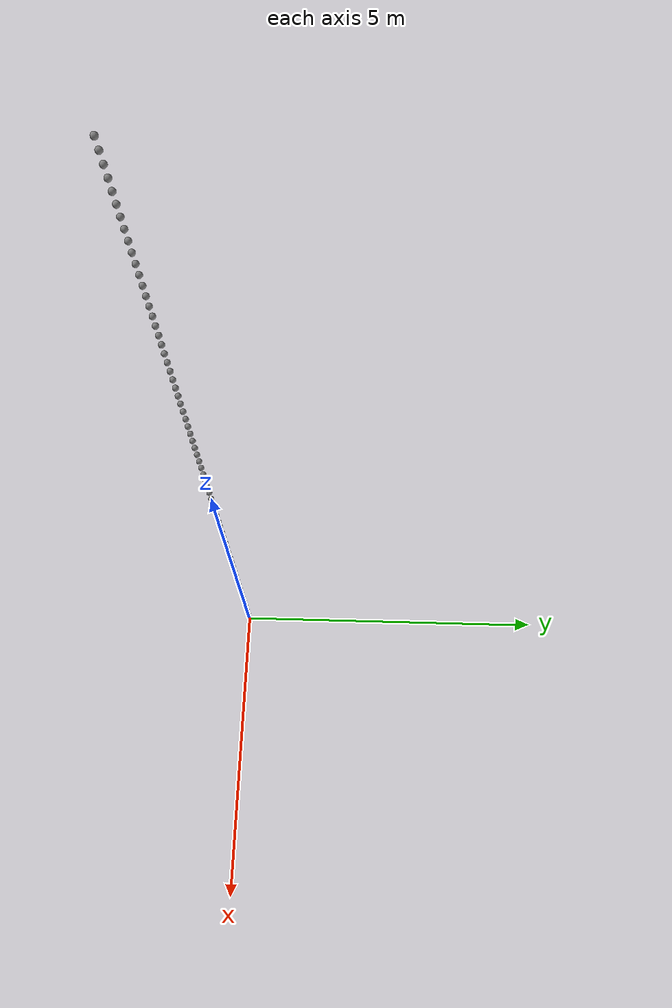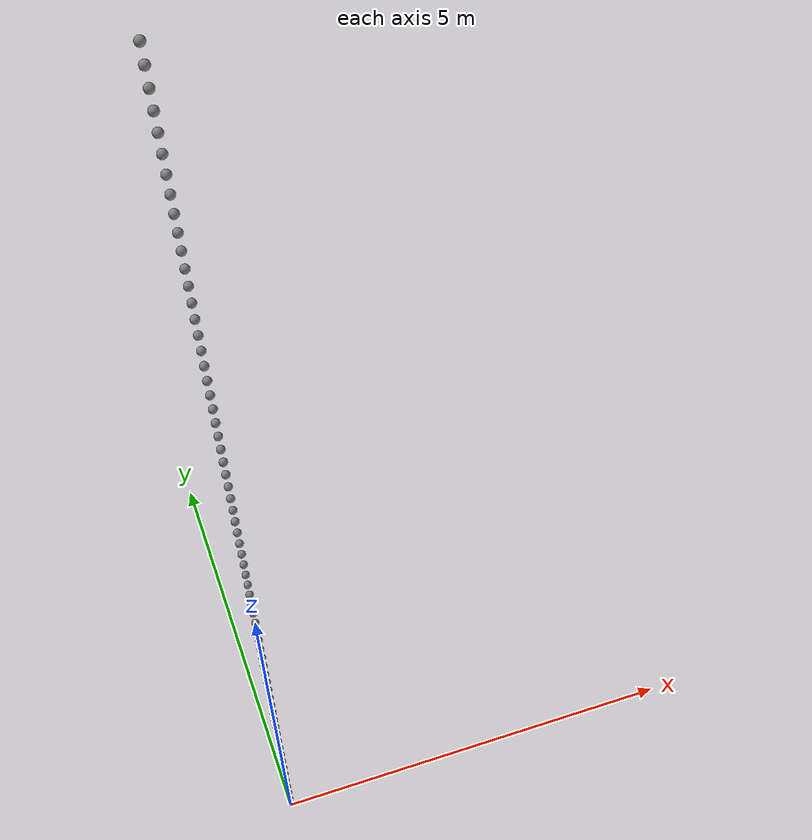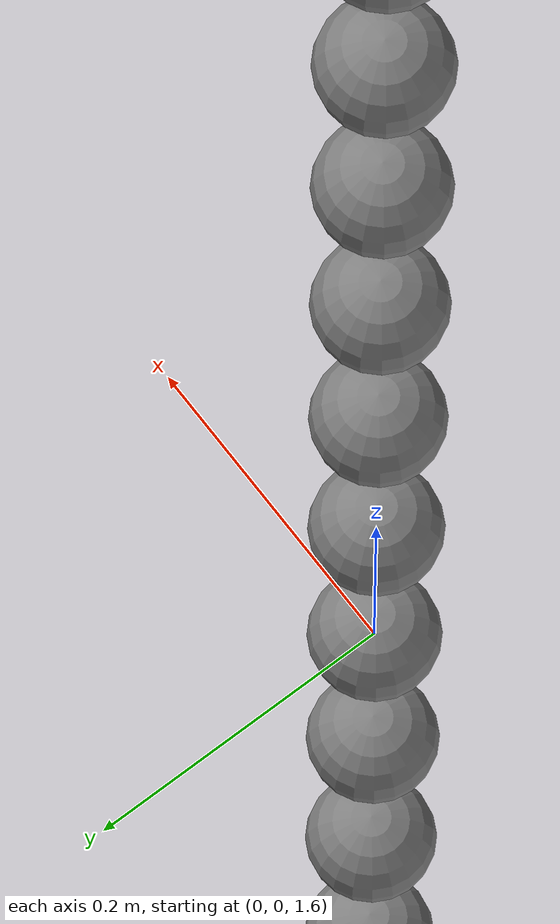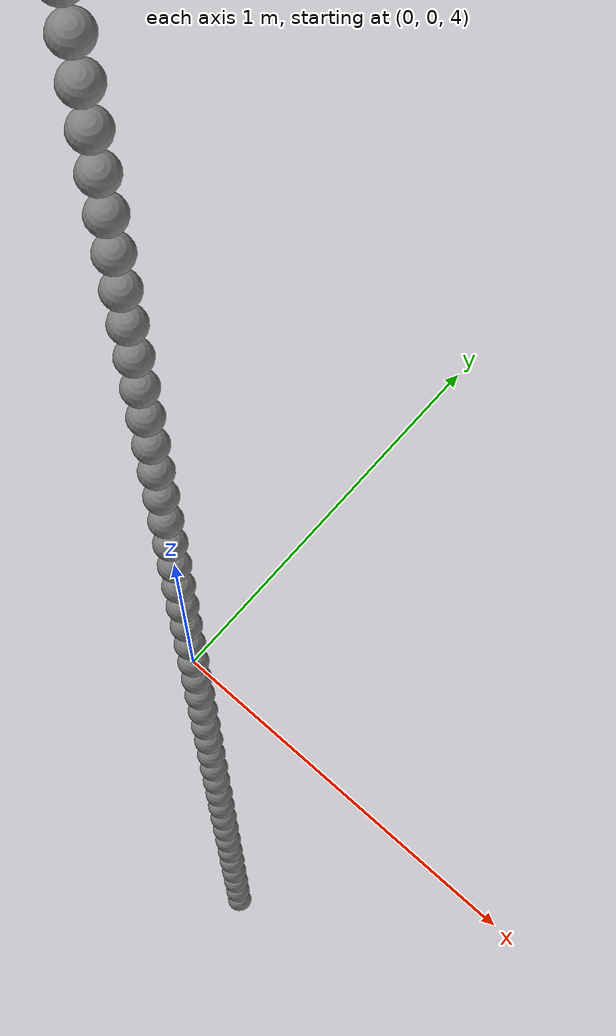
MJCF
<mujoco><option timestep=".002" gravity="0 0 0" jacobian="dense"/><worldbody><body pos="0 0 .2"><joint name="j0"/><geom size=".04" mass="1" contype="0" conaffinity="0"/><body pos="0 0 .2"><joint name="j1"/><geom size=".04" mass="1" contype="0" conaffinity="0"/><body pos="0 0 .2"><joint name="j2"/><geom size=".04" mass="1" contype="0" conaffinity="0"/><body pos="0 0 .2"><joint name="j3"/><geom size=".04" mass="1" contype="0" conaffinity="0"/><body pos="0 0 .2"><joint name="j4"/><geom size=".04" mass="1" contype="0" conaffinity="0"/><body pos="0 0 .2"><joint name="j5"/><geom size=".04" mass="1" contype="0" conaffinity="0"/><body pos="0 0 .2"><joint name="j6"/><geom size=".04" mass="1" contype="0" conaffinity="0"/><body pos="0 0 .2"><joint name="j7"/><geom size=".04" mass="1" contype="0" conaffinity="0"/><body pos="0 0 .2"><joint name="j8"/><geom size=".04" mass="1" contype="0" conaffinity="0"/><body pos="0 0 .2"><joint name="j9"/><geom size=".04" mass="1" contype="0" conaffinity="0"/><body pos="0 0 .2"><joint name="j10"/><geom size=".04" mass="1" contype="0" conaffinity="0"/><body pos="0 0 .2"><joint name="j11"/><geom size=".04" mass="1" contype="0" conaffinity="0"/><body pos="0 0 .2"><joint name="j12"/><geom size=".04" mass="1" contype="0" conaffinity="0"/><body pos="0 0 .2"><joint name="j13"/><geom size=".04" mass="1" contype="0" conaffinity="0"/><body pos="0 0 .2"><joint name="j14"/><geom size=".04" mass="1" contype="0" conaffinity="0"/><body pos="0 0 .2"><joint name="j15"/><geom size=".04" mass="1" contype="0" conaffinity="0"/><body pos="0 0 .2"><joint name="j16"/><geom size=".04" mass="1" contype="0" conaffinity="0"/><body pos="0 0 .2"><joint name="j17"/><geom size=".04" mass="1" contype="0" conaffinity="0"/><body pos="0 0 .2"><joint name="j18"/><geom size=".04" mass="1" contype="0" conaffinity="0"/><body pos="0 0 .2"><joint name="j19"/><geom size=".04" mass="1" contype="0" conaffinity="0"/><body pos="0 0 .2"><joint name="j20"/><geom size=".04" mass="1" contype="0" conaffinity="0"/><body pos="0 0 .2"><joint name="j21"/><geom size=".04" mass="1" contype="0" conaffinity="0"/><body pos="0 0 .2"><joint name="j22"/><geom size=".04" mass="1" contype="0" conaffinity="0"/><body pos="0 0 .2"><joint name="j23"/><geom size=".04" mass="1" contype="0" conaffinity="0"/><body pos="0 0 .2"><joint name="j24"/><geom size=".04" mass="1" contype="0" conaffinity="0"/><body pos="0 0 .2"><joint name="j25"/><geom size=".04" mass="1" contype="0" conaffinity="0"/><body pos="0 0 .2"><joint name="j26"/><geom size=".04" mass="1" contype="0" conaffinity="0"/><body pos="0 0 .2"><joint name="j27"/><geom size=".04" mass="1" contype="0" conaffinity="0"/><body pos="0 0 .2"><joint name="j28"/><geom size=".04" mass="1" contype="0" conaffinity="0"/><body pos="0 0 .2"><joint name="j29"/><geom size=".04" mass="1" contype="0" conaffinity="0"/><body pos="0 0 .2"><joint name="j30"/><geom size=".04" mass="1" contype="0" conaffinity="0"/><body pos="0 0 .2"><joint name="j31"/><geom size=".04" mass="1" contype="0" conaffinity="0"/><body pos="0 0 .2"><joint name="j32"/><geom size=".04" mass="1" contype="0" conaffinity="0"/><body pos="0 0 .2"><joint name="j33"/><geom size=".04" mass="1" contype="0" conaffinity="0"/><body pos="0 0 .2"><joint name="j34"/><geom size=".04" mass="1" contype="0" conaffinity="0"/><body pos="0 0 .2"><joint name="j35"/><geom size=".04" mass="1" contype="0" conaffinity="0"/><body pos="0 0 .2"><joint name="j36"/><geom size=".04" mass="1" contype="0" conaffinity="0"/><body pos="0 0 .2"><joint name="j37"/><geom size=".04" mass="1" contype="0" conaffinity="0"/><body pos="0 0 .2"><joint name="j38"/><geom size=".04" mass="1" contype="0" conaffinity="0"/><body pos="0 0 .2"><joint name="j39"/><geom size=".04" mass="1" contype="0" conaffinity="0"/><body pos="0 0 .2"><joint name="j40"/><geom size=".04" mass="1" contype="0" conaffinity="0"/><body pos="0 0 .2"><joint name="j41"/><geom size=".04" mass="1" contype="0" conaffinity="0"/><body pos="0 0 .2"><joint name="j42"/><geom size=".04" mass="1" contype="0" conaffinity="0"/><body pos="0 0 .2"><joint name="j43"/><geom size=".04" mass="1" contype="0" conaffinity="0"/><body pos="0 0 .2"><joint name="j44"/><geom size=".04" mass="1" contype="0" conaffinity="0"/><body pos="0 0 .2"><joint name="j45"/><geom size=".04" mass="1" contype="0" conaffinity="0"/><body pos="0 0 .2"><joint name="j46"/><geom size=".04" mass="1" contype="0" conaffinity="0"/><body pos="0 0 .2"><joint name="j47"/><geom size=".04" mass="1" contype="0" conaffinity="0"/><body pos="0 0 .2"><joint name="j48"/><geom size=".04" mass="1" contype="0" conaffinity="0"/><body pos="0 0 .2"><joint name="j49"/><geom size=".04" mass="1" contype="0" conaffinity="0"/><body pos="0 0 .2"><joint name="j50"/><geom size=".04" mass="1" contype="0" conaffinity="0"/><body pos="0 0 .2"><joint name="j51"/><geom size=".04" mass="1" contype="0" conaffinity="0"/><body pos="0 0 .2"><joint name="j52"/><geom size=".04" mass="1" contype="0" conaffinity="0"/><body pos="0 0 .2"><joint name="j53"/><geom size=".04" mass="1" contype="0" conaffinity="0"/><body pos="0 0 .2"><joint name="j54"/><geom size=".04" mass="1" contype="0" conaffinity="0"/><body pos="0 0 .2"><joint name="j55"/><geom size=".04" mass="1" contype="0" conaffinity="0"/><body pos="0 0 .2"><joint name="j56"/><geom size=".04" mass="1" contype="0" conaffinity="0"/><body pos="0 0 .2"><joint name="j57"/><geom size=".04" mass="1" contype="0" conaffinity="0"/><body pos="0 0 .2"><joint name="j58"/><geom size=".04" mass="1" contype="0" conaffinity="0"/><body pos="0 0 .2"><joint name="j59"/><geom size=".04" mass="1" contype="0" conaffinity="0"/><body pos="0 0 .2"><joint name="j60"/><geom size=".04" mass="1" contype="0" conaffinity="0"/><body pos="0 0 .2"><joint name="j61"/><geom size=".04" mass="1" contype="0" conaffinity="0"/><body pos="0 0 .2"><joint name="j62"/><geom size=".04" mass="1" contype="0" conaffinity="0"/><body pos="0 0 .2"><joint name="j63"/><geom size=".04" mass="1" contype="0" conaffinity="0"/></body></body></body></body></body></body></body></body></body></body></body></body></body></body></body></body></body></body></body></body></body></body></body></body></body></body></body></body></body></body></body></body></body></body></body></body></body></body></body></body></body></body></body></body></body></body></body></body></body></body></body></body></body></body></body></body></body></body></body></body></body></body></body></body></worldbody><actuator><dcmotor joint="j0" motorconst=".2" resistance="2" input="pos vel ff voltage" controller=".5 .8 .2 2 .5 12" cogging=".05 3 .2" inductance="0 .02" thermal="2 10 0 .003 20 20" lugre="30 .1 .2 .3 .1"/><dcmotor joint="j1" motorconst=".2" resistance="2" input="pos vel ff voltage" controller=".5 .8 .2 2 .5 12" cogging=".05 3 .2" inductance="0 .02" thermal="2 10 0 .003 20 20" lugre="30 .1 .2 .3 .1"/><dcmotor joint="j2" motorconst=".2" resistance="2" input="pos vel ff voltage" controller=".5 .8 .2 2 .5 12" cogging=".05 3 .2" inductance="0 .02" thermal="2 10 0 .003 20 20" lugre="30 .1 .2 .3 .1"/><dcmotor joint="j3" motorconst=".2" resistance="2" input="pos vel ff voltage" controller=".5 .8 .2 2 .5 12" cogging=".05 3 .2" inductance="0 .02" thermal="2 10 0 .003 20 20" lugre="30 .1 .2 .3 .1"/><dcmotor joint="j4" motorconst=".2" resistance="2" input="pos vel ff voltage" controller=".5 .8 .2 2 .5 12" cogging=".05 3 .2" inductance="0 .02" thermal="2 10 0 .003 20 20" lugre="30 .1 .2 .3 .1"/><dcmotor joint="j5" motorconst=".2" resistance="2" input="pos vel ff voltage" controller=".5 .8 .2 2 .5 12" cogging=".05 3 .2" inductance="0 .02" thermal="2 10 0 .003 20 20" lugre="30 .1 .2 .3 .1"/><dcmotor joint="j6" motorconst=".2" resistance="2" input="pos vel ff voltage" controller=".5 .8 .2 2 .5 12" cogging=".05 3 .2" inductance="0 .02" thermal="2 10 0 .003 20 20" lugre="30 .1 .2 .3 .1"/><dcmotor joint="j7" motorconst=".2" resistance="2" input="pos vel ff voltage" controller=".5 .8 .2 2 .5 12" cogging=".05 3 .2" inductance="0 .02" thermal="2 10 0 .003 20 20" lugre="30 .1 .2 .3 .1"/><dcmotor joint="j8" motorconst=".2" resistance="2" input="pos vel ff voltage" controller=".5 .8 .2 2 .5 12" cogging=".05 3 .2" inductance="0 .02" thermal="2 10 0 .003 20 20" lugre="30 .1 .2 .3 .1"/><dcmotor joint="j9" motorconst=".2" resistance="2" input="pos vel ff voltage" controller=".5 .8 .2 2 .5 12" cogging=".05 3 .2" inductance="0 .02" thermal="2 10 0 .003 20 20" lugre="30 .1 .2 .3 .1"/><dcmotor joint="j10" motorconst=".2" resistance="2" input="pos vel ff voltage" controller=".5 .8 .2 2 .5 12" cogging=".05 3 .2" inductance="0 .02" thermal="2 10 0 .003 20 20" lugre="30 .1 .2 .3 .1"/><dcmotor joint="j11" motorconst=".2" resistance="2" input="pos vel ff voltage" controller=".5 .8 .2 2 .5 12" cogging=".05 3 .2" inductance="0 .02" thermal="2 10 0 .003 20 20" lugre="30 .1 .2 .3 .1"/><dcmotor joint="j12" motorconst=".2" resistance="2" input="pos vel ff voltage" controller=".5 .8 .2 2 .5 12" cogging=".05 3 .2" inductance="0 .02" thermal="2 10 0 .003 20 20" lugre="30 .1 .2 .3 .1"/><dcmotor joint="j13" motorconst=".2" resistance="2" input="pos vel ff voltage" controller=".5 .8 .2 2 .5 12" cogging=".05 3 .2" inductance="0 .02" thermal="2 10 0 .003 20 20" lugre="30 .1 .2 .3 .1"/><dcmotor joint="j14" motorconst=".2" resistance="2" input="pos vel ff voltage" controller=".5 .8 .2 2 .5 12" cogging=".05 3 .2" inductance="0 .02" thermal="2 10 0 .003 20 20" lugre="30 .1 .2 .3 .1"/><dcmotor joint="j15" motorconst=".2" resistance="2" input="pos vel ff voltage" controller=".5 .8 .2 2 .5 12" cogging=".05 3 .2" inductance="0 .02" thermal="2 10 0 .003 20 20" lugre="30 .1 .2 .3 .1"/><dcmotor joint="j16" motorconst=".2" resistance="2" input="pos vel ff voltage" controller=".5 .8 .2 2 .5 12" cogging=".05 3 .2" inductance="0 .02" thermal="2 10 0 .003 20 20" lugre="30 .1 .2 .3 .1"/><dcmotor joint="j17" motorconst=".2" resistance="2" input="pos vel ff voltage" controller=".5 .8 .2 2 .5 12" cogging=".05 3 .2" inductance="0 .02" thermal="2 10 0 .003 20 20" lugre="30 .1 .2 .3 .1"/><dcmotor joint="j18" motorconst=".2" resistance="2" input="pos vel ff voltage" controller=".5 .8 .2 2 .5 12" cogging=".05 3 .2" inductance="0 .02" thermal="2 10 0 .003 20 20" lugre="30 .1 .2 .3 .1"/><dcmotor joint="j19" motorconst=".2" resistance="2" input="pos vel ff voltage" controller=".5 .8 .2 2 .5 12" cogging=".05 3 .2" inductance="0 .02" thermal="2 10 0 .003 20 20" lugre="30 .1 .2 .3 .1"/><dcmotor joint="j20" motorconst=".2" resistance="2" input="pos vel ff voltage" controller=".5 .8 .2 2 .5 12" cogging=".05 3 .2" inductance="0 .02" thermal="2 10 0 .003 20 20" lugre="30 .1 .2 .3 .1"/><dcmotor joint="j21" motorconst=".2" resistance="2" input="pos vel ff voltage" controller=".5 .8 .2 2 .5 12" cogging=".05 3 .2" inductance="0 .02" thermal="2 10 0 .003 20 20" lugre="30 .1 .2 .3 .1"/><dcmotor joint="j22" motorconst=".2" resistance="2" input="pos vel ff voltage" controller=".5 .8 .2 2 .5 12" cogging=".05 3 .2" inductance="0 .02" thermal="2 10 0 .003 20 20" lugre="30 .1 .2 .3 .1"/><dcmotor joint="j23" motorconst=".2" resistance="2" input="pos vel ff voltage" controller=".5 .8 .2 2 .5 12" cogging=".05 3 .2" inductance="0 .02" thermal="2 10 0 .003 20 20" lugre="30 .1 .2 .3 .1"/><dcmotor joint="j24" motorconst=".2" resistance="2" input="pos vel ff voltage" controller=".5 .8 .2 2 .5 12" cogging=".05 3 .2" inductance="0 .02" thermal="2 10 0 .003 20 20" lugre="30 .1 .2 .3 .1"/><dcmotor joint="j25" motorconst=".2" resistance="2" input="pos vel ff voltage" controller=".5 .8 .2 2 .5 12" cogging=".05 3 .2" inductance="0 .02" thermal="2 10 0 .003 20 20" lugre="30 .1 .2 .3 .1"/><dcmotor joint="j26" motorconst=".2" resistance="2" input="pos vel ff voltage" controller=".5 .8 .2 2 .5 12" cogging=".05 3 .2" inductance="0 .02" thermal="2 10 0 .003 20 20" lugre="30 .1 .2 .3 .1"/><dcmotor joint="j27" motorconst=".2" resistance="2" input="pos vel ff voltage" controller=".5 .8 .2 2 .5 12" cogging=".05 3 .2" inductance="0 .02" thermal="2 10 0 .003 20 20" lugre="30 .1 .2 .3 .1"/><dcmotor joint="j28" motorconst=".2" resistance="2" input="pos vel ff voltage" controller=".5 .8 .2 2 .5 12" cogging=".05 3 .2" inductance="0 .02" thermal="2 10 0 .003 20 20" lugre="30 .1 .2 .3 .1"/><dcmotor joint="j29" motorconst=".2" resistance="2" input="pos vel ff voltage" controller=".5 .8 .2 2 .5 12" cogging=".05 3 .2" inductance="0 .02" thermal="2 10 0 .003 20 20" lugre="30 .1 .2 .3 .1"/><dcmotor joint="j30" motorconst=".2" resistance="2" input="pos vel ff voltage" controller=".5 .8 .2 2 .5 12" cogging=".05 3 .2" inductance="0 .02" thermal="2 10 0 .003 20 20" lugre="30 .1 .2 .3 .1"/><dcmotor joint="j31" motorconst=".2" resistance="2" input="pos vel ff voltage" controller=".5 .8 .2 2 .5 12" cogging=".05 3 .2" inductance="0 .02" thermal="2 10 0 .003 20 20" lugre="30 .1 .2 .3 .1"/><dcmotor joint="j32" motorconst=".2" resistance="2" input="pos vel ff voltage" controller=".5 .8 .2 2 .5 12" cogging=".05 3 .2" inductance="0 .02" thermal="2 10 0 .003 20 20" lugre="30 .1 .2 .3 .1"/><dcmotor joint="j33" motorconst=".2" resistance="2" input="pos vel ff voltage" controller=".5 .8 .2 2 .5 12" cogging=".05 3 .2" inductance="0 .02" thermal="2 10 0 .003 20 20" lugre="30 .1 .2 .3 .1"/><dcmotor joint="j34" motorconst=".2" resistance="2" input="pos vel ff voltage" controller=".5 .8 .2 2 .5 12" cogging=".05 3 .2" inductance="0 .02" thermal="2 10 0 .003 20 20" lugre="30 .1 .2 .3 .1"/><dcmotor joint="j35" motorconst=".2" resistance="2" input="pos vel ff voltage" controller=".5 .8 .2 2 .5 12" cogging=".05 3 .2" inductance="0 .02" thermal="2 10 0 .003 20 20" lugre="30 .1 .2 .3 .1"/><dcmotor joint="j36" motorconst=".2" resistance="2" input="pos vel ff voltage" controller=".5 .8 .2 2 .5 12" cogging=".05 3 .2" inductance="0 .02" thermal="2 10 0 .003 20 20" lugre="30 .1 .2 .3 .1"/><dcmotor joint="j37" motorconst=".2" resistance="2" input="pos vel ff voltage" controller=".5 .8 .2 2 .5 12" cogging=".05 3 .2" inductance="0 .02" thermal="2 10 0 .003 20 20" lugre="30 .1 .2 .3 .1"/><dcmotor joint="j38" motorconst=".2" resistance="2" input="pos vel ff voltage" controller=".5 .8 .2 2 .5 12" cogging=".05 3 .2" inductance="0 .02" thermal="2 10 0 .003 20 20" lugre="30 .1 .2 .3 .1"/><dcmotor joint="j39" motorconst=".2" resistance="2" input="pos vel ff voltage" controller=".5 .8 .2 2 .5 12" cogging=".05 3 .2" inductance="0 .02" thermal="2 10 0 .003 20 20" lugre="30 .1 .2 .3 .1"/><dcmotor joint="j40" motorconst=".2" resistance="2" input="pos vel ff voltage" controller=".5 .8 .2 2 .5 12" cogging=".05 3 .2" inductance="0 .02" thermal="2 10 0 .003 20 20" lugre="30 .1 .2 .3 .1"/><dcmotor joint="j41" motorconst=".2" resistance="2" input="pos vel ff voltage" controller=".5 .8 .2 2 .5 12" cogging=".05 3 .2" inductance="0 .02" thermal="2 10 0 .003 20 20" lugre="30 .1 .2 .3 .1"/><dcmotor joint="j42" motorconst=".2" resistance="2" input="pos vel ff voltage" controller=".5 .8 .2 2 .5 12" cogging=".05 3 .2" inductance="0 .02" thermal="2 10 0 .003 20 20" lugre="30 .1 .2 .3 .1"/><dcmotor joint="j43" motorconst=".2" resistance="2" input="pos vel ff voltage" controller=".5 .8 .2 2 .5 12" cogging=".05 3 .2" inductance="0 .02" thermal="2 10 0 .003 20 20" lugre="30 .1 .2 .3 .1"/><dcmotor joint="j44" motorconst=".2" resistance="2" input="pos vel ff voltage" controller=".5 .8 .2 2 .5 12" cogging=".05 3 .2" inductance="0 .02" thermal="2 10 0 .003 20 20" lugre="30 .1 .2 .3 .1"/><dcmotor joint="j45" motorconst=".2" resistance="2" input="pos vel ff voltage" controller=".5 .8 .2 2 .5 12" cogging=".05 3 .2" inductance="0 .02" thermal="2 10 0 .003 20 20" lugre="30 .1 .2 .3 .1"/><dcmotor joint="j46" motorconst=".2" resistance="2" input="pos vel ff voltage" controller=".5 .8 .2 2 .5 12" cogging=".05 3 .2" inductance="0 .02" thermal="2 10 0 .003 20 20" lugre="30 .1 .2 .3 .1"/><dcmotor joint="j47" motorconst=".2" resistance="2" input="pos vel ff voltage" controller=".5 .8 .2 2 .5 12" cogging=".05 3 .2" inductance="0 .02" thermal="2 10 0 .003 20 20" lugre="30 .1 .2 .3 .1"/><dcmotor joint="j48" motorconst=".2" resistance="2" input="pos vel ff voltage" controller=".5 .8 .2 2 .5 12" cogging=".05 3 .2" inductance="0 .02" thermal="2 10 0 .003 20 20" lugre="30 .1 .2 .3 .1"/><dcmotor joint="j49" motorconst=".2" resistance="2" input="pos vel ff voltage" controller=".5 .8 .2 2 .5 12" cogging=".05 3 .2" inductance="0 .02" thermal="2 10 0 .003 20 20" lugre="30 .1 .2 .3 .1"/><dcmotor joint="j50" motorconst=".2" resistance="2" input="pos vel ff voltage" controller=".5 .8 .2 2 .5 12" cogging=".05 3 .2" inductance="0 .02" thermal="2 10 0 .003 20 20" lugre="30 .1 .2 .3 .1"/><dcmotor joint="j51" motorconst=".2" resistance="2" input="pos vel ff voltage" controller=".5 .8 .2 2 .5 12" cogging=".05 3 .2" inductance="0 .02" thermal="2 10 0 .003 20 20" lugre="30 .1 .2 .3 .1"/><dcmotor joint="j52" motorconst=".2" resistance="2" input="pos vel ff voltage" controller=".5 .8 .2 2 .5 12" cogging=".05 3 .2" inductance="0 .02" thermal="2 10 0 .003 20 20" lugre="30 .1 .2 .3 .1"/><dcmotor joint="j53" motorconst=".2" resistance="2" input="pos vel ff voltage" controller=".5 .8 .2 2 .5 12" cogging=".05 3 .2" inductance="0 .02" thermal="2 10 0 .003 20 20" lugre="30 .1 .2 .3 .1"/><dcmotor joint="j54" motorconst=".2" resistance="2" input="pos vel ff voltage" controller=".5 .8 .2 2 .5 12" cogging=".05 3 .2" inductance="0 .02" thermal="2 10 0 .003 20 20" lugre="30 .1 .2 .3 .1"/><dcmotor joint="j55" motorconst=".2" resistance="2" input="pos vel ff voltage" controller=".5 .8 .2 2 .5 12" cogging=".05 3 .2" inductance="0 .02" thermal="2 10 0 .003 20 20" lugre="30 .1 .2 .3 .1"/><dcmotor joint="j56" motorconst=".2" resistance="2" input="pos vel ff voltage" controller=".5 .8 .2 2 .5 12" cogging=".05 3 .2" inductance="0 .02" thermal="2 10 0 .003 20 20" lugre="30 .1 .2 .3 .1"/><dcmotor joint="j57" motorconst=".2" resistance="2" input="pos vel ff voltage" controller=".5 .8 .2 2 .5 12" cogging=".05 3 .2" inductance="0 .02" thermal="2 10 0 .003 20 20" lugre="30 .1 .2 .3 .1"/><dcmotor joint="j58" motorconst=".2" resistance="2" input="pos vel ff voltage" controller=".5 .8 .2 2 .5 12" cogging=".05 3 .2" inductance="0 .02" thermal="2 10 0 .003 20 20" lugre="30 .1 .2 .3 .1"/><dcmotor joint="j59" motorconst=".2" resistance="2" input="pos vel ff voltage" controller=".5 .8 .2 2 .5 12" cogging=".05 3 .2" inductance="0 .02" thermal="2 10 0 .003 20 20" lugre="30 .1 .2 .3 .1"/><dcmotor joint="j60" motorconst=".2" resistance="2" input="pos vel ff voltage" controller=".5 .8 .2 2 .5 12" cogging=".05 3 .2" inductance="0 .02" thermal="2 10 0 .003 20 20" lugre="30 .1 .2 .3 .1"/><dcmotor joint="j61" motorconst=".2" resistance="2" input="pos vel ff voltage" controller=".5 .8 .2 2 .5 12" cogging=".05 3 .2" inductance="0 .02" thermal="2 10 0 .003 20 20" lugre="30 .1 .2 .3 .1"/><dcmotor joint="j62" motorconst=".2" resistance="2" input="pos vel ff voltage" controller=".5 .8 .2 2 .5 12" cogging=".05 3 .2" inductance="0 .02" thermal="2 10 0 .003 20 20" lugre="30 .1 .2 .3 .1"/><dcmotor joint="j63" motorconst=".2" resistance="2" input="pos vel ff voltage" controller=".5 .8 .2 2 .5 12" cogging=".05 3 .2" inductance="0 .02" thermal="2 10 0 .003 20 20" lugre="30 .1 .2 .3 .1"/></actuator></mujoco>
